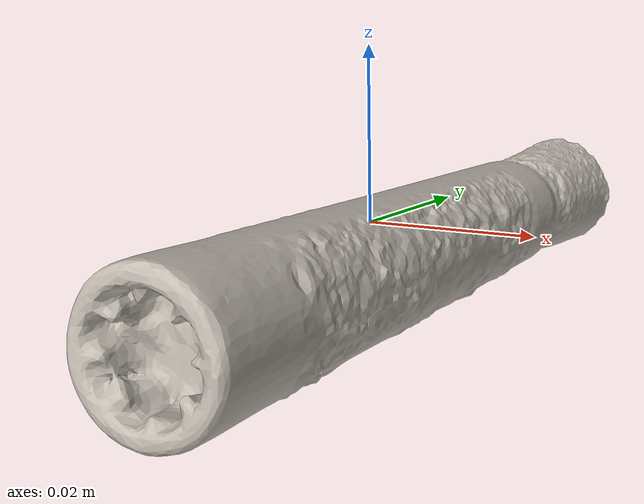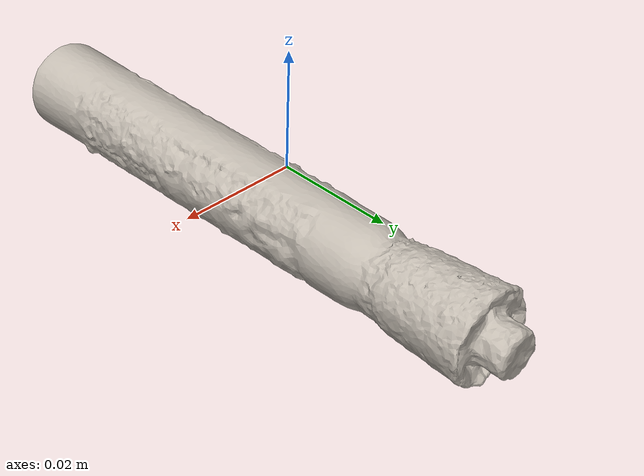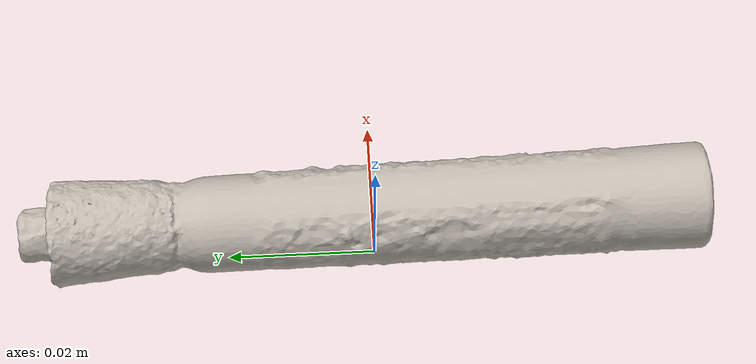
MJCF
<mujoco model="bread">
  <asset>
    <mesh file="nontextured.stl" name="obj_mesh" scale="0.8 0.8 0.8"/>
    <texture file="../../../../../textures/bread.png" type="2d" name="tex-bread" />
    <material name="bread" reflectance="0.7" texrepeat="15 15" texture="tex-bread" texuniform="true"/>
  </asset>
  <worldbody>
    <body>
      <body name="collision">
        <geom pos="0.03569 0.0050825 -0.0091745" mesh="obj_mesh" type="mesh" solimp="0.998 0.998 0.001" solref="0.001 1" density="50" friction="0.95 0.3 0.1"  material="bread" group="1" condim="4"/>
      </body>
      <body name="visual">
        <geom pos="0.03569 0.0050825 -0.0091745" mesh="obj_mesh" type="mesh" material="bread"  conaffinity="0" contype="0"  group="0" mass="0.0001"/>
        <geom pos="0.03569 0.0050825 -0.0091745" mesh="obj_mesh" type="mesh" material="bread"  conaffinity="0" contype="0"  group="1" mass="0.0001"/>
      </body>
      <site rgba="0 0 0 0" size="0.005" pos="0 0 -0.0094475" name="bottom_site"/>
      <site rgba="0 0 0 0" size="0.005" pos="0 0 0.0094475" name="top_site"/>
      <site rgba="0 0 0 0" size="0.005" pos="0.010511 0.0604845 0.0094475" name="horizontal_radius_site"/>
    </body>
  </worldbody>
</mujoco>
